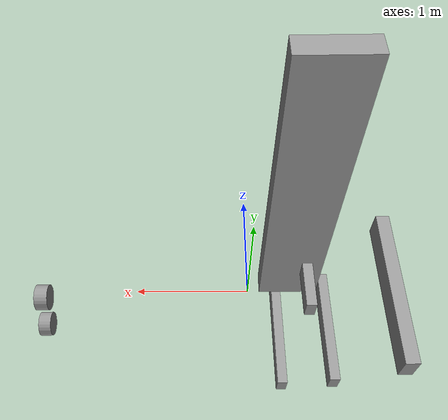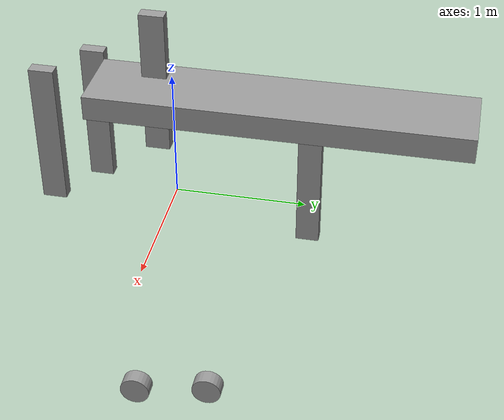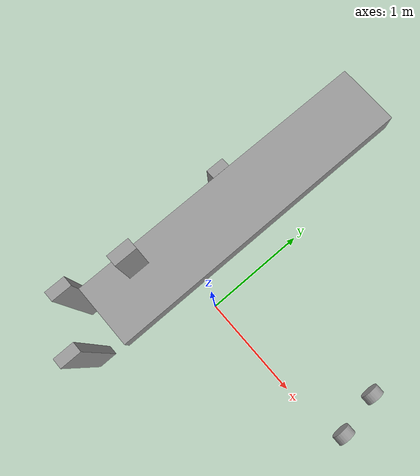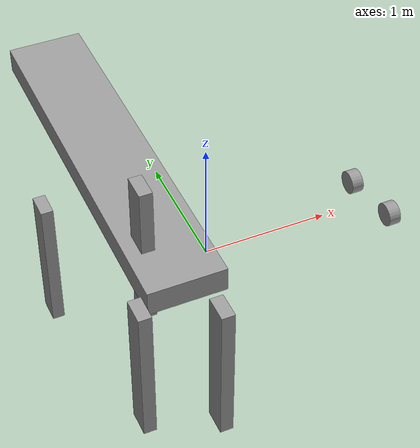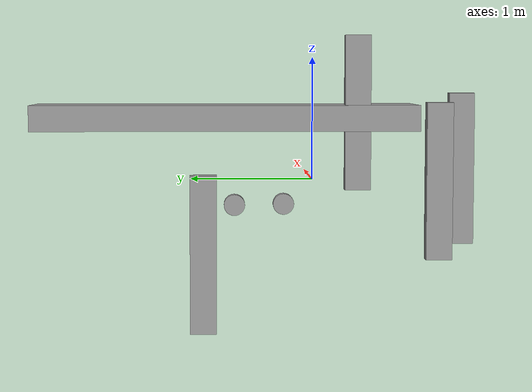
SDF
<?xml version='1.0'?>
<sdf version='1.7'>
  <model name='trolley'>
    <link name='link_1'>
      <inertial>
        <mass>1</mass>
        <inertia>
          <ixx>0.166667</ixx>
          <ixy>0</ixy>
          <ixz>0</ixz>
          <iyy>0.166667</iyy>
          <iyz>0</iyz>
          <izz>0.166667</izz>
        </inertia>
        <pose>0 0 0 0 -0 0</pose>
      </inertial>
      <pose>-0.478895 0.718803 0.52617 0 -0 0</pose>
      <gravity>1</gravity>
      <self_collide>0</self_collide>
      <kinematic>0</kinematic>
      <enable_wind>0</enable_wind>
      <visual name='visual'>
        <pose>0 0 0 0 -0 0</pose>
        <geometry>
          <box>
            <size>0.6 3 0.2</size>
          </box>
        </geometry>
        <material>
          <lighting>1</lighting>
          <script>
            <uri>file://media/materials/scripts/gazebo.material</uri>
            <name>Gazebo/Grey</name>
          </script>
          <shader type='pixel'>
            <normal_map>__default__</normal_map>
          </shader>
          <ambient>0.3 0.3 0.3 1</ambient>
          <diffuse>0.7 0.7 0.7 1</diffuse>
          <specular>0.01 0.01 0.01 1</specular>
          <emissive>0 0 0 1</emissive>
        </material>
        <transparency>0</transparency>
        <cast_shadows>1</cast_shadows>
      </visual>
      <collision name='collision'>
        <laser_retro>0</laser_retro>
        <max_contacts>10</max_contacts>
        <pose>0 0 0 0 -0 0</pose>
        <geometry>
          <box>
            <size>0.6 3 0.2</size>
          </box>
        </geometry>
        <surface>
          <friction>
            <ode>
              <mu>1</mu>
              <mu2>1</mu2>
              <fdir1>0 0 0</fdir1>
              <slip1>0</slip1>
              <slip2>0</slip2>
            </ode>
            <torsional>
              <coefficient>1</coefficient>
              <patch_radius>0</patch_radius>
              <surface_radius>0</surface_radius>
              <use_patch_radius>1</use_patch_radius>
              <ode>
                <slip>0</slip>
              </ode>
            </torsional>
          </friction>
          <bounce>
            <restitution_coefficient>0</restitution_coefficient>
            <threshold>1e+06</threshold>
          </bounce>
          <contact>
            <collide_without_contact>0</collide_without_contact>
            <collide_without_contact_bitmask>1</collide_without_contact_bitmask>
            <collide_bitmask>1</collide_bitmask>
            <ode>
              <soft_cfm>0</soft_cfm>
              <soft_erp>0.2</soft_erp>
              <kp>1e+13</kp>
              <kd>1</kd>
              <max_vel>0.01</max_vel>
              <min_depth>0</min_depth>
            </ode>
            <bullet>
              <split_impulse>1</split_impulse>
              <split_impulse_penetration_threshold>-0.01</split_impulse_penetration_threshold>
              <soft_cfm>0</soft_cfm>
              <soft_erp>0.2</soft_erp>
              <kp>1e+13</kp>
              <kd>1</kd>
            </bullet>
          </contact>
        </surface>
      </collision>
    </link>
    <link name='link_2'>
      <inertial>
        <mass>1</mass>
        <inertia>
          <ixx>0.166667</ixx>
          <ixy>0</ixy>
          <ixz>0</ixz>
          <iyy>0.166667</iyy>
          <iyz>0</iyz>
          <izz>0.166667</izz>
        </inertia>
        <pose>0 0 0 0 -0 0</pose>
      </inertial>
      <pose>-0.394514 -1.15854 0.114668 0 -0 0</pose>
      <gravity>1</gravity>
      <self_collide>0</self_collide>
      <kinematic>0</kinematic>
      <enable_wind>0</enable_wind>
      <visual name='visual'>
        <pose>0 0 0 0 -0 0</pose>
        <geometry>
          <box>
            <size>0.1 0.2 1.2</size>
          </box>
        </geometry>
        <material>
          <lighting>1</lighting>
          <script>
            <uri>file://media/materials/scripts/gazebo.material</uri>
            <name>Gazebo/Grey</name>
          </script>
          <shader type='pixel'>
            <normal_map>__default__</normal_map>
          </shader>
          <ambient>0.3 0.3 0.3 1</ambient>
          <diffuse>0.7 0.7 0.7 1</diffuse>
          <specular>0.01 0.01 0.01 1</specular>
          <emissive>0 0 0 1</emissive>
        </material>
        <transparency>0</transparency>
        <cast_shadows>1</cast_shadows>
      </visual>
      <collision name='collision'>
        <laser_retro>0</laser_retro>
        <max_contacts>10</max_contacts>
        <pose>0 0 0 0 -0 0</pose>
        <geometry>
          <box>
            <size>0.1 0.2 1.2</size>
          </box>
        </geometry>
        <surface>
          <friction>
            <ode>
              <mu>1</mu>
              <mu2>1</mu2>
              <fdir1>0 0 0</fdir1>
              <slip1>0</slip1>
              <slip2>0</slip2>
            </ode>
            <torsional>
              <coefficient>1</coefficient>
              <patch_radius>0</patch_radius>
              <surface_radius>0</surface_radius>
              <use_patch_radius>1</use_patch_radius>
              <ode>
                <slip>0</slip>
              </ode>
            </torsional>
          </friction>
          <bounce>
            <restitution_coefficient>0</restitution_coefficient>
            <threshold>1e+06</threshold>
          </bounce>
          <contact>
            <collide_without_contact>0</collide_without_contact>
            <collide_without_contact_bitmask>1</collide_without_contact_bitmask>
            <collide_bitmask>1</collide_bitmask>
            <ode>
              <soft_cfm>0</soft_cfm>
              <soft_erp>0.2</soft_erp>
              <kp>1e+13</kp>
              <kd>1</kd>
              <max_vel>0.01</max_vel>
              <min_depth>0</min_depth>
            </ode>
            <bullet>
              <split_impulse>1</split_impulse>
              <split_impulse_penetration_threshold>-0.01</split_impulse_penetration_threshold>
              <soft_cfm>0</soft_cfm>
              <soft_erp>0.2</soft_erp>
              <kp>1e+13</kp>
              <kd>1</kd>
            </bullet>
          </contact>
        </surface>
      </collision>
    </link>
    <link name='link_2_clone'>
      <inertial>
        <mass>1</mass>
        <inertia>
          <ixx>0.166667</ixx>
          <ixy>0</ixy>
          <ixz>0</ixz>
          <iyy>0.166667</iyy>
          <iyz>0</iyz>
          <izz>0.166667</izz>
        </inertia>
        <pose>0 0 0 0 -0 0</pose>
      </inertial>
      <pose>-0.881024 -0.905716 0.051894 0 -0 0</pose>
      <gravity>1</gravity>
      <self_collide>0</self_collide>
      <kinematic>0</kinematic>
      <enable_wind>0</enable_wind>
      <visual name='visual'>
        <pose>0 0 0 0 -0 0</pose>
        <geometry>
          <box>
            <size>0.1 0.2 1.2</size>
          </box>
        </geometry>
        <material>
          <lighting>1</lighting>
          <script>
            <uri>file://media/materials/scripts/gazebo.material</uri>
            <name>Gazebo/Grey</name>
          </script>
          <shader type='pixel'>
            <normal_map>__default__</normal_map>
          </shader>
          <ambient>0.3 0.3 0.3 1</ambient>
          <diffuse>0.7 0.7 0.7 1</diffuse>
          <specular>0.01 0.01 0.01 1</specular>
          <emissive>0 0 0 1</emissive>
        </material>
        <transparency>0</transparency>
        <cast_shadows>1</cast_shadows>
      </visual>
      <collision name='collision'>
        <laser_retro>0</laser_retro>
        <max_contacts>10</max_contacts>
        <pose>0 0 0 0 -0 0</pose>
        <geometry>
          <box>
            <size>0.1 0.2 1.2</size>
          </box>
        </geometry>
        <surface>
          <friction>
            <ode>
              <mu>1</mu>
              <mu2>1</mu2>
              <fdir1>0 0 0</fdir1>
              <slip1>0</slip1>
              <slip2>0</slip2>
            </ode>
            <torsional>
              <coefficient>1</coefficient>
              <patch_radius>0</patch_radius>
              <surface_radius>0</surface_radius>
              <use_patch_radius>1</use_patch_radius>
              <ode>
                <slip>0</slip>
              </ode>
            </torsional>
          </friction>
          <bounce>
            <restitution_coefficient>0</restitution_coefficient>
            <threshold>1e+06</threshold>
          </bounce>
          <contact>
            <collide_without_contact>0</collide_without_contact>
            <collide_without_contact_bitmask>1</collide_without_contact_bitmask>
            <collide_bitmask>1</collide_bitmask>
            <ode>
              <soft_cfm>0</soft_cfm>
              <soft_erp>0.2</soft_erp>
              <kp>1e+13</kp>
              <kd>1</kd>
              <max_vel>0.01</max_vel>
              <min_depth>0</min_depth>
            </ode>
            <bullet>
              <split_impulse>1</split_impulse>
              <split_impulse_penetration_threshold>-0.01</split_impulse_penetration_threshold>
              <soft_cfm>0</soft_cfm>
              <soft_erp>0.2</soft_erp>
              <kp>1e+13</kp>
              <kd>1</kd>
            </bullet>
          </contact>
        </surface>
      </collision>
    </link>
    <link name='link_2_clone_0'>
      <inertial>
        <mass>1</mass>
        <inertia>
          <ixx>0.166667</ixx>
          <ixy>0</ixy>
          <ixz>0</ixz>
          <iyy>0.166667</iyy>
          <iyz>0</iyz>
          <izz>0.166667</izz>
        </inertia>
        <pose>0 0 0 0 -0 0</pose>
      </inertial>
      <pose>-0.618193 -0.310261 0.565431 0 -0 0</pose>
      <gravity>1</gravity>
      <self_collide>0</self_collide>
      <kinematic>0</kinematic>
      <enable_wind>0</enable_wind>
      <visual name='visual'>
        <pose>0 0 0 0 -0 0</pose>
        <geometry>
          <box>
            <size>0.1 0.2 1.2</size>
          </box>
        </geometry>
        <material>
          <lighting>1</lighting>
          <script>
            <uri>file://media/materials/scripts/gazebo.material</uri>
            <name>Gazebo/Grey</name>
          </script>
          <shader type='pixel'>
            <normal_map>__default__</normal_map>
          </shader>
          <ambient>0.3 0.3 0.3 1</ambient>
          <diffuse>0.7 0.7 0.7 1</diffuse>
          <specular>0.01 0.01 0.01 1</specular>
          <emissive>0 0 0 1</emissive>
        </material>
        <transparency>0</transparency>
        <cast_shadows>1</cast_shadows>
      </visual>
      <collision name='collision'>
        <laser_retro>0</laser_retro>
        <max_contacts>10</max_contacts>
        <pose>0 0 0 0 -0 0</pose>
        <geometry>
          <box>
            <size>0.1 0.2 1.2</size>
          </box>
        </geometry>
        <surface>
          <friction>
            <ode>
              <mu>1</mu>
              <mu2>1</mu2>
              <fdir1>0 0 0</fdir1>
              <slip1>0</slip1>
              <slip2>0</slip2>
            </ode>
            <torsional>
              <coefficient>1</coefficient>
              <patch_radius>0</patch_radius>
              <surface_radius>0</surface_radius>
              <use_patch_radius>1</use_patch_radius>
              <ode>
                <slip>0</slip>
              </ode>
            </torsional>
          </friction>
          <bounce>
            <restitution_coefficient>0</restitution_coefficient>
            <threshold>1e+06</threshold>
          </bounce>
          <contact>
            <collide_without_contact>0</collide_without_contact>
            <collide_without_contact_bitmask>1</collide_without_contact_bitmask>
            <collide_bitmask>1</collide_bitmask>
            <ode>
              <soft_cfm>0</soft_cfm>
              <soft_erp>0.2</soft_erp>
              <kp>1e+13</kp>
              <kd>1</kd>
              <max_vel>0.01</max_vel>
              <min_depth>0</min_depth>
            </ode>
            <bullet>
              <split_impulse>1</split_impulse>
              <split_impulse_penetration_threshold>-0.01</split_impulse_penetration_threshold>
              <soft_cfm>0</soft_cfm>
              <soft_erp>0.2</soft_erp>
              <kp>1e+13</kp>
              <kd>1</kd>
            </bullet>
          </contact>
        </surface>
      </collision>
    </link>
    <link name='link_2_clone_1'>
      <inertial>
        <mass>1</mass>
        <inertia>
          <ixx>0.166667</ixx>
          <ixy>0</ixy>
          <ixz>0</ixz>
          <iyy>0.166667</iyy>
          <iyz>0</iyz>
          <izz>0.166667</izz>
        </inertia>
        <pose>0 0 0 0 -0 0</pose>
      </inertial>
      <pose>-0.99218 0.888053 -0.491161 0 -0 0</pose>
      <gravity>1</gravity>
      <self_collide>0</self_collide>
      <kinematic>0</kinematic>
      <enable_wind>0</enable_wind>
      <visual name='visual'>
        <pose>0 0 0 0 -0 0</pose>
        <geometry>
          <box>
            <size>0.1 0.2 1.2</size>
          </box>
        </geometry>
        <material>
          <lighting>1</lighting>
          <script>
            <uri>file://media/materials/scripts/gazebo.material</uri>
            <name>Gazebo/Grey</name>
          </script>
          <shader type='pixel'>
            <normal_map>__default__</normal_map>
          </shader>
          <ambient>0.3 0.3 0.3 1</ambient>
          <diffuse>0.7 0.7 0.7 1</diffuse>
          <specular>0.01 0.01 0.01 1</specular>
          <emissive>0 0 0 1</emissive>
        </material>
        <transparency>0</transparency>
        <cast_shadows>1</cast_shadows>
      </visual>
      <collision name='collision'>
        <laser_retro>0</laser_retro>
        <max_contacts>10</max_contacts>
        <pose>0 0 0 0 -0 0</pose>
        <geometry>
          <box>
            <size>0.1 0.2 1.2</size>
          </box>
        </geometry>
        <surface>
          <friction>
            <ode>
              <mu>1</mu>
              <mu2>1</mu2>
              <fdir1>0 0 0</fdir1>
              <slip1>0</slip1>
              <slip2>0</slip2>
            </ode>
            <torsional>
              <coefficient>1</coefficient>
              <patch_radius>0</patch_radius>
              <surface_radius>0</surface_radius>
              <use_patch_radius>1</use_patch_radius>
              <ode>
                <slip>0</slip>
              </ode>
            </torsional>
          </friction>
          <bounce>
            <restitution_coefficient>0</restitution_coefficient>
            <threshold>1e+06</threshold>
          </bounce>
          <contact>
            <collide_without_contact>0</collide_without_contact>
            <collide_without_contact_bitmask>1</collide_without_contact_bitmask>
            <collide_bitmask>1</collide_bitmask>
            <ode>
              <soft_cfm>0</soft_cfm>
              <soft_erp>0.2</soft_erp>
              <kp>1e+13</kp>
              <kd>1</kd>
              <max_vel>0.01</max_vel>
              <min_depth>0</min_depth>
            </ode>
            <bullet>
              <split_impulse>1</split_impulse>
              <split_impulse_penetration_threshold>-0.01</split_impulse_penetration_threshold>
              <soft_cfm>0</soft_cfm>
              <soft_erp>0.2</soft_erp>
              <kp>1e+13</kp>
              <kd>1</kd>
            </bullet>
          </contact>
        </surface>
      </collision>
    </link>
    <link name='link_3'>
      <inertial>
        <mass>1</mass>
        <inertia>
          <ixx>0.145833</ixx>
          <ixy>0</ixy>
          <ixz>0</ixz>
          <iyy>0.145833</iyy>
          <iyz>0</iyz>
          <izz>0.125</izz>
        </inertia>
        <pose>0 0 0 0 -0 0</pose>
      </inertial>
      <pose>1.72694 0.148328 -0.383506 0 -0 0</pose>
      <gravity>1</gravity>
      <self_collide>0</self_collide>
      <kinematic>0</kinematic>
      <enable_wind>0</enable_wind>
      <visual name='visual'>
        <pose>0 0 0 0 1.57 0</pose>
        <geometry>
          <cylinder>
            <radius>0.1</radius>
            <length>0.1</length>
          </cylinder>
        </geometry>
        <material>
          <lighting>1</lighting>
          <script>
            <uri>file://media/materials/scripts/gazebo.material</uri>
            <name>Gazebo/Grey</name>
          </script>
          <shader type='pixel'>
            <normal_map>__default__</normal_map>
          </shader>
          <ambient>0.3 0.3 0.3 1</ambient>
          <diffuse>0.7 0.7 0.7 1</diffuse>
          <specular>0.01 0.01 0.01 1</specular>
          <emissive>0 0 0 1</emissive>
        </material>
        <transparency>0</transparency>
        <cast_shadows>1</cast_shadows>
      </visual>
      <collision name='collision'>
        <laser_retro>0</laser_retro>
        <max_contacts>10</max_contacts>
        <pose>0 0 0 0 1.57 0</pose>
        <geometry>
          <cylinder>
            <radius>0.1</radius>
            <length>0.1</length>
          </cylinder>
        </geometry>
        <surface>
          <friction>
            <ode>
              <mu>1</mu>
              <mu2>1</mu2>
              <fdir1>0 0 0</fdir1>
              <slip1>0</slip1>
              <slip2>0</slip2>
            </ode>
            <torsional>
              <coefficient>1</coefficient>
              <patch_radius>0</patch_radius>
              <surface_radius>0</surface_radius>
              <use_patch_radius>1</use_patch_radius>
              <ode>
                <slip>0</slip>
              </ode>
            </torsional>
          </friction>
          <bounce>
            <restitution_coefficient>0</restitution_coefficient>
            <threshold>1e+06</threshold>
          </bounce>
          <contact>
            <collide_without_contact>0</collide_without_contact>
            <collide_without_contact_bitmask>1</collide_without_contact_bitmask>
            <collide_bitmask>1</collide_bitmask>
            <ode>
              <soft_cfm>0</soft_cfm>
              <soft_erp>0.2</soft_erp>
              <kp>1e+13</kp>
              <kd>1</kd>
              <max_vel>0.01</max_vel>
              <min_depth>0</min_depth>
            </ode>
            <bullet>
              <split_impulse>1</split_impulse>
              <split_impulse_penetration_threshold>-0.01</split_impulse_penetration_threshold>
              <soft_cfm>0</soft_cfm>
              <soft_erp>0.2</soft_erp>
              <kp>1e+13</kp>
              <kd>1</kd>
            </bullet>
          </contact>
        </surface>
      </collision>
    </link>
    <link name='link_3_clone'>
      <inertial>
        <mass>1</mass>
        <inertia>
          <ixx>0.145833</ixx>
          <ixy>0</ixy>
          <ixz>0</ixz>
          <iyy>0.145833</iyy>
          <iyz>0</iyz>
          <izz>0.125</izz>
        </inertia>
        <pose>0 0 0 0 -0 0</pose>
      </inertial>
      <pose>1.63787 0.619329 -0.383506 0 -0 0</pose>
      <gravity>1</gravity>
      <self_collide>0</self_collide>
      <kinematic>0</kinematic>
      <enable_wind>0</enable_wind>
      <visual name='visual'>
        <pose>0 0 0 0 1.57 0</pose>
        <geometry>
          <cylinder>
            <radius>0.1</radius>
            <length>0.1</length>
          </cylinder>
        </geometry>
        <material>
          <lighting>1</lighting>
          <script>
            <uri>file://media/materials/scripts/gazebo.material</uri>
            <name>Gazebo/Grey</name>
          </script>
          <shader type='pixel'>
            <normal_map>__default__</normal_map>
          </shader>
          <ambient>0.3 0.3 0.3 1</ambient>
          <diffuse>0.7 0.7 0.7 1</diffuse>
          <specular>0.01 0.01 0.01 1</specular>
          <emissive>0 0 0 1</emissive>
        </material>
        <transparency>0</transparency>
        <cast_shadows>1</cast_shadows>
      </visual>
      <collision name='collision'>
        <laser_retro>0</laser_retro>
        <max_contacts>10</max_contacts>
        <pose>0 0 0 0 1.57 0</pose>
        <geometry>
          <cylinder>
            <radius>0.1</radius>
            <length>0.1</length>
          </cylinder>
        </geometry>
        <surface>
          <friction>
            <ode>
              <mu>1</mu>
              <mu2>1</mu2>
              <fdir1>0 0 0</fdir1>
              <slip1>0</slip1>
              <slip2>0</slip2>
            </ode>
            <torsional>
              <coefficient>1</coefficient>
              <patch_radius>0</patch_radius>
              <surface_radius>0</surface_radius>
              <use_patch_radius>1</use_patch_radius>
              <ode>
                <slip>0</slip>
              </ode>
            </torsional>
          </friction>
          <bounce>
            <restitution_coefficient>0</restitution_coefficient>
            <threshold>1e+06</threshold>
          </bounce>
          <contact>
            <collide_without_contact>0</collide_without_contact>
            <collide_without_contact_bitmask>1</collide_without_contact_bitmask>
            <collide_bitmask>1</collide_bitmask>
            <ode>
              <soft_cfm>0</soft_cfm>
              <soft_erp>0.2</soft_erp>
              <kp>1e+13</kp>
              <kd>1</kd>
              <max_vel>0.01</max_vel>
              <min_depth>0</min_depth>
            </ode>
            <bullet>
              <split_impulse>1</split_impulse>
              <split_impulse_penetration_threshold>-0.01</split_impulse_penetration_threshold>
              <soft_cfm>0</soft_cfm>
              <soft_erp>0.2</soft_erp>
              <kp>1e+13</kp>
              <kd>1</kd>
            </bullet>
          </contact>
        </surface>
      </collision>
    </link>
    <joint name='link_1_JOINT_0' type='fixed'>
      <parent>link_1</parent>
      <child>link_2</child>
      <pose>0 0 0 0 -0 0</pose>
      <physics>
        <ode>
          <limit>
            <cfm>0</cfm>
            <erp>0.2</erp>
          </limit>
          <suspension>
            <cfm>0</cfm>
            <erp>0.2</erp>
          </suspension>
        </ode>
      </physics>
    </joint>
    <joint name='link_1_JOINT_1' type='revolute'>
      <parent>link_1</parent>
      <child>link_2_clone</child>
      <pose>0 0 0 0 -0 0</pose>
      <axis>
        <xyz>1 0 0</xyz>
        <limit>
          <lower>-1.79769e+308</lower>
          <upper>1.79769e+308</upper>
          <effort>-1</effort>
          <velocity>-1</velocity>
        </limit>
        <dynamics>
          <spring_reference>0</spring_reference>
          <spring_stiffness>0</spring_stiffness>
          <damping>0</damping>
        </dynamics>
      </axis>
      <physics>
        <ode>
          <limit>
            <cfm>0</cfm>
            <erp>0.2</erp>
          </limit>
          <suspension>
            <cfm>0</cfm>
            <erp>0.2</erp>
          </suspension>
        </ode>
      </physics>
    </joint>
    <joint name='link_1_JOINT_2' type='revolute'>
      <parent>link_1</parent>
      <child>link_2_clone_0</child>
      <pose>0 0 0 0 -0 0</pose>
      <axis>
        <xyz>1 0 0</xyz>
        <limit>
          <lower>-1.79769e+308</lower>
          <upper>1.79769e+308</upper>
          <effort>-1</effort>
          <velocity>-1</velocity>
        </limit>
        <dynamics>
          <spring_reference>0</spring_reference>
          <spring_stiffness>0</spring_stiffness>
          <damping>0</damping>
        </dynamics>
      </axis>
      <physics>
        <ode>
          <limit>
            <cfm>0</cfm>
            <erp>0.2</erp>
          </limit>
          <suspension>
            <cfm>0</cfm>
            <erp>0.2</erp>
          </suspension>
        </ode>
      </physics>
    </joint>
    <static>0</static>
    <allow_auto_disable>1</allow_auto_disable>
  </model>
</sdf>
